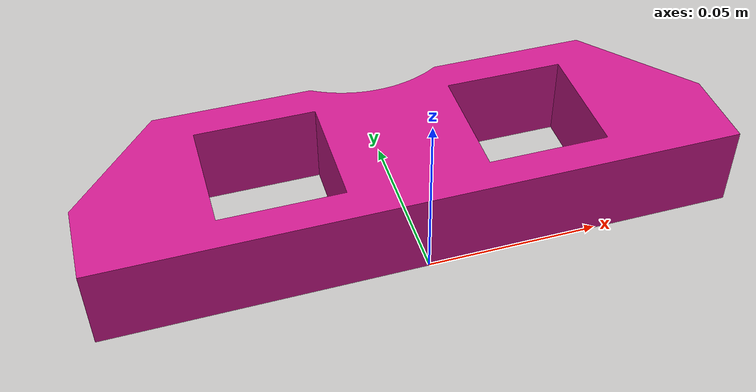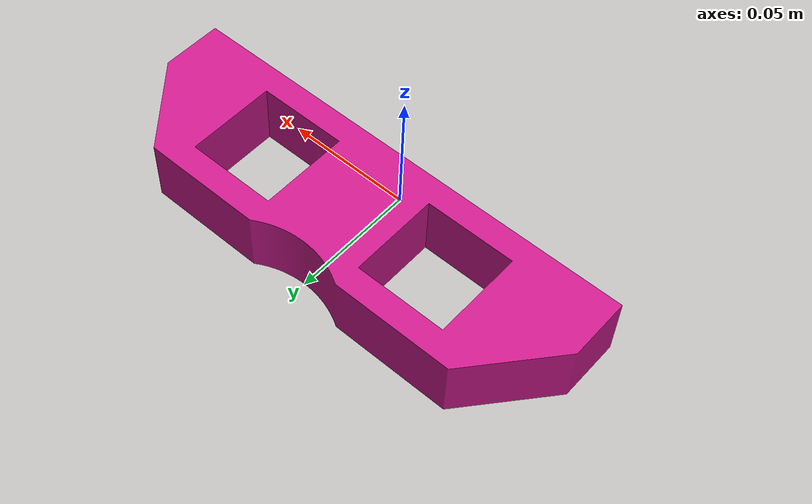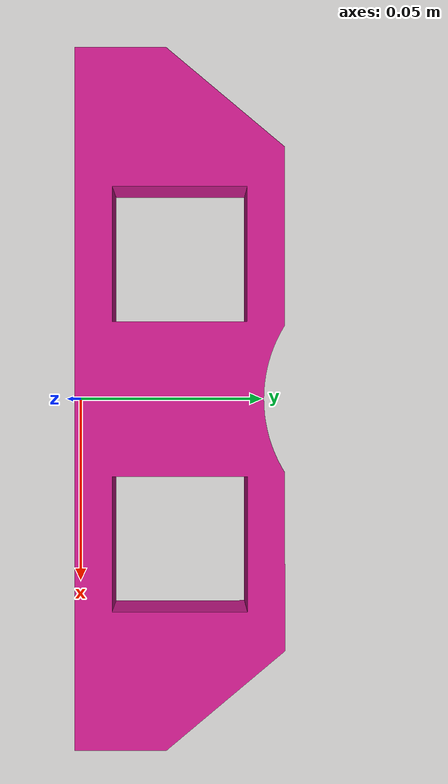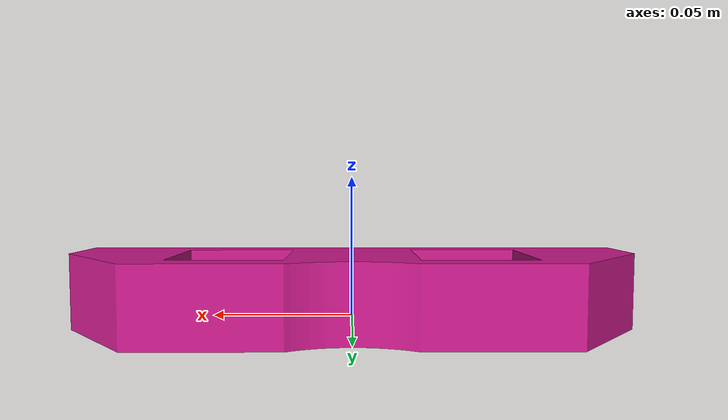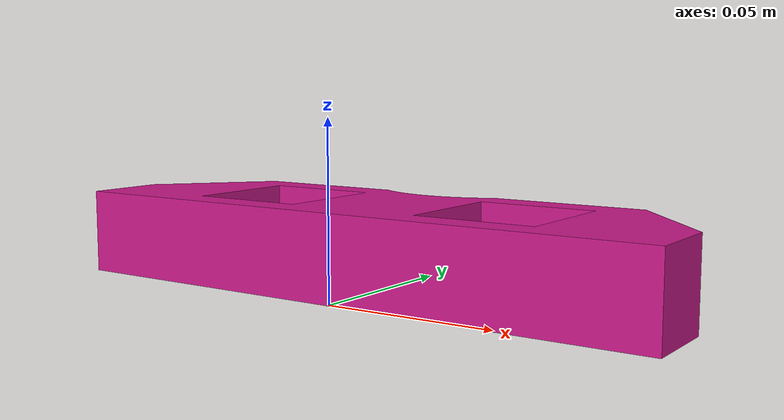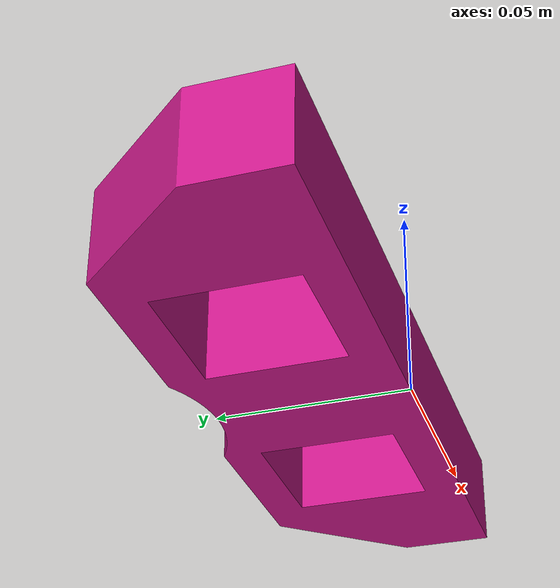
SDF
<?xml version='1.0'?>
<sdf version='1.6'>
  <model name='cran_field_separator'>
    <link name='link_12'>
      <pose frame=''>0 0 -0.030524 0 -0 0</pose>
<inertial>
    <pose>0 0.02749999 0.043023999 0 0 0</pose>
    <mass>0.5</mass>
    <inertia>
      <ixx> 0.00015208333</ixx>
      <ixy>0</ixy>
      <ixz>0</ixz>
      <iyy> 0.00143670833</iyy>
      <iyz>0</iyz>
      <izz>0.0015367083374510208</izz>
    </inertia>
  </inertial>
          <visual name='visual'>
        <geometry>
          <mesh>
            <uri>model://cran_field_separator/cran_feld_separator.stl</uri>
            <scale>0.001 0.001 0.001</scale>
          </mesh>
        </geometry>
        <material>
          <ambient>0.8 0.1 0.55 1</ambient>
          <diffuse>0.8 0.1 0.55 1</diffuse>
          <specular>0.01 0.01 0.01 1</specular>
          <emissive>0 0 0 1</emissive>
          <shader type='vertex'>
            <normal_map>__default__</normal_map>
          </shader>
        </material>
        <cast_shadows>1</cast_shadows>
        <transparency>0</transparency>
      </visual>
      <collision name='collision'>
        <laser_retro>0</laser_retro>
        <max_contacts>10</max_contacts>
        <pose frame=''>0 0 0 0 -0 0</pose>
        <geometry>
          <mesh>
            <uri>model://cran_field_separator/cran_feld_separator.stl</uri>
            <scale>0.001 0.001 0.001</scale>
          </mesh>
        </geometry>

<surface>
          <friction>
            <ode>
              <mu>1.15</mu>
              <mu2>1.15</mu2>
            </ode>
          </friction>
          <contact>
            <ode>
              <kp>1e15</kp>
              <kd>1e13</kd>
              <min_depth>0.0001</min_depth>
              <max_vel>0</max_vel>
            </ode>
          </contact>
        </surface>
       </collision>
    </link>

    <static>0</static>
    <allow_auto_disable>1</allow_auto_disable>
  </model>
</sdf>
